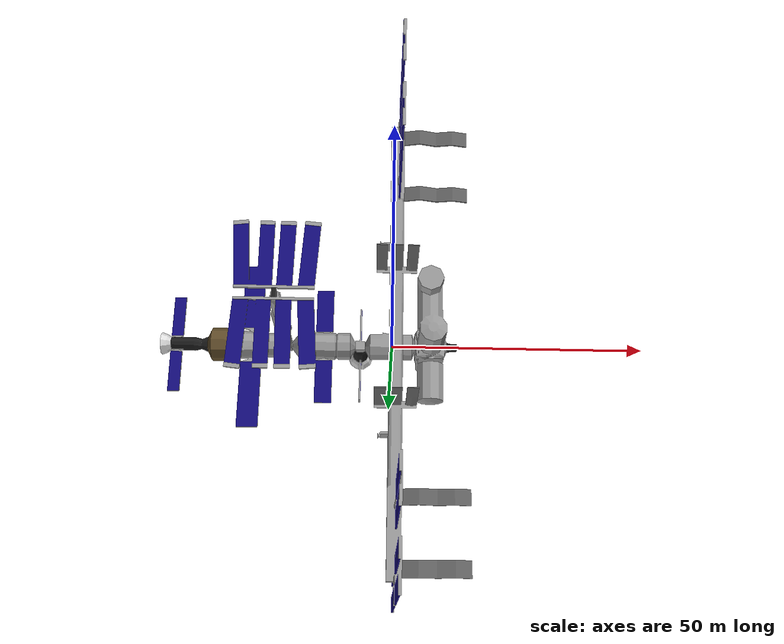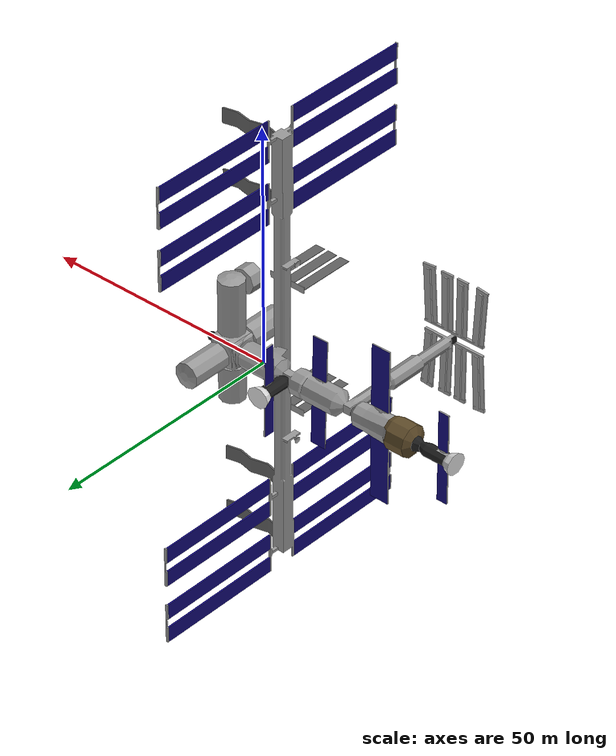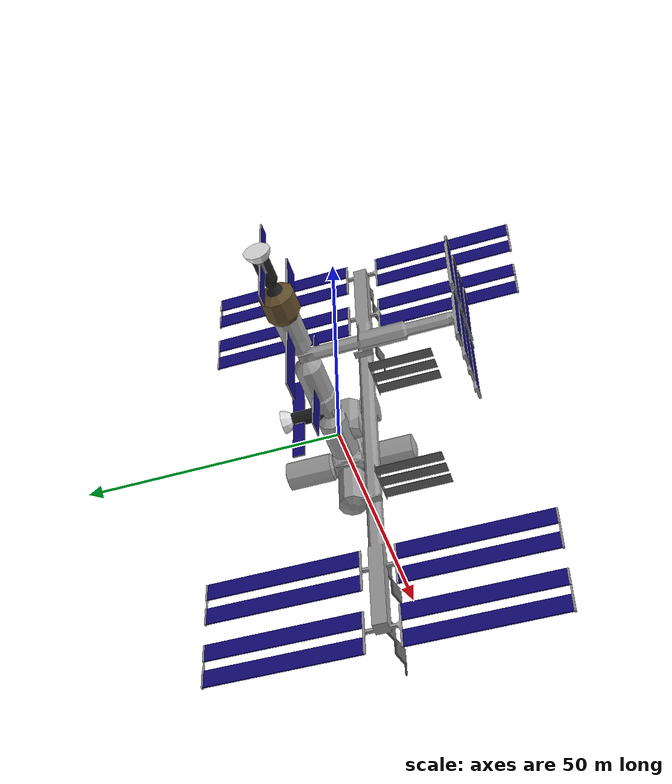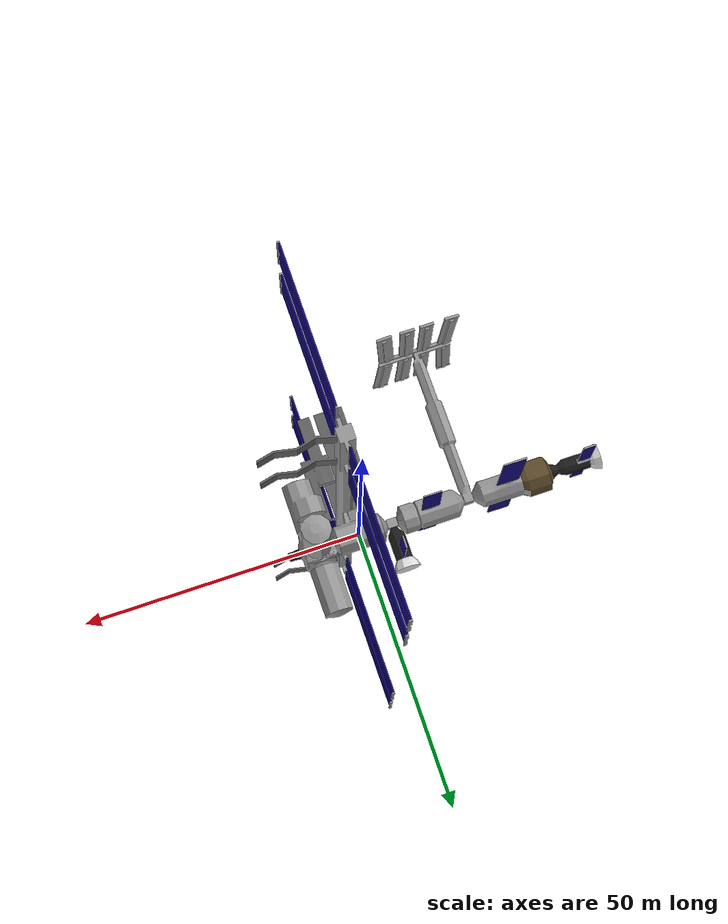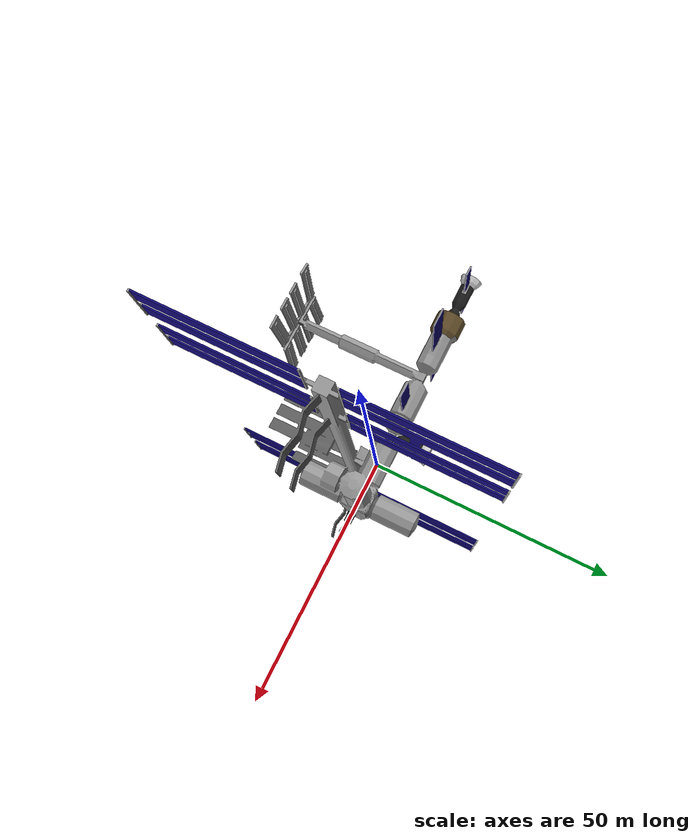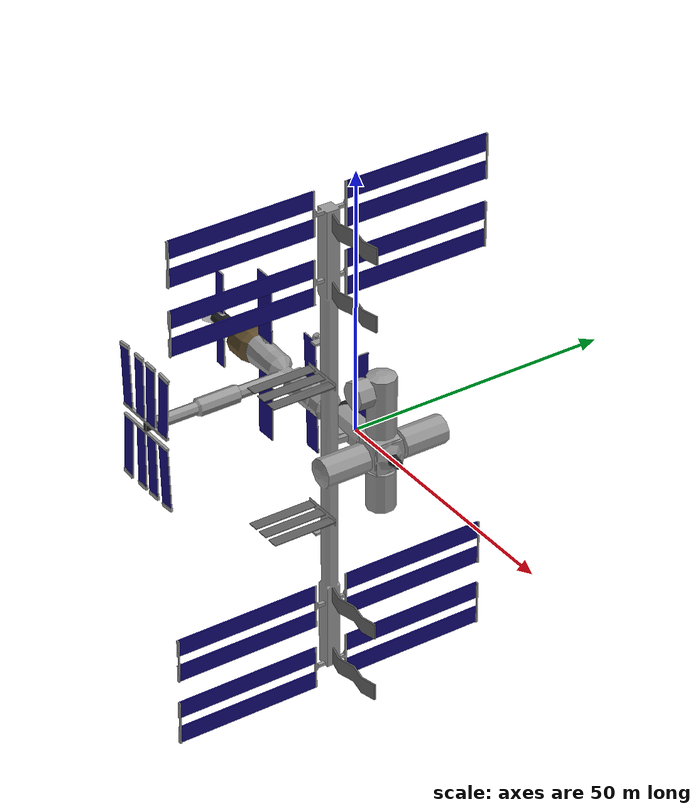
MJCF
<mujoco model="ISS_lowpoly">
  <default>
    <default class="visual">
      <geom group="2" type="mesh" contype="0" conaffinity="0" mass="0"/>
    </default>
    <default class="collision">
      <geom group="3" type="mesh" mass="0"/>
    </default>
  </default>
  <asset>
    <material name="Brown" specular="0.5" shininess="0.2" rgba="0.372549 0.295429 0.160707 1.000000"/>
    <material name="ISSDarkMetal" specular="0.5" shininess="0.01245731" rgba="0.109590 0.109590 0.109590 1.000000"/>
    <material name="ISSGray2" specular="0.5" shininess="0.01245731" rgba="0.376715 0.376715 0.376715 1.000000"/>
    <material name="ISSMetal1" specular="0.5" shininess="0.01245731" rgba="0.595895 0.595895 0.595895 1.000000"/>
    <material name="ISSSolarPanels" specular="0.5" shininess="0.01245731" rgba="0.068157 0.036909 0.470588 1.000000"/>
    <material name="ISSWhiteMetal" specular="0.5" shininess="0.01245731" rgba="0.876707 0.876707 0.876707 1.000000"/>
    <mesh file="ISS_lowpoly_0.obj"/>
    <mesh file="ISS_lowpoly_1.obj"/>
    <mesh file="ISS_lowpoly_2.obj"/>
    <mesh file="ISS_lowpoly_3.obj"/>
    <mesh file="ISS_lowpoly_4.obj"/>
    <mesh file="ISS_lowpoly_5.obj"/>
  </asset>
  <worldbody>
    <body name="ISS_lowpoly">
      <geom mesh="ISS_lowpoly_0" material="Brown" class="visual"/>
      <geom mesh="ISS_lowpoly_1" material="ISSWhiteMetal" class="visual"/>
      <geom mesh="ISS_lowpoly_2" material="ISSDarkMetal" class="visual"/>
      <geom mesh="ISS_lowpoly_3" material="ISSMetal1" class="visual"/>
      <geom mesh="ISS_lowpoly_4" material="ISSSolarPanels" class="visual"/>
      <geom mesh="ISS_lowpoly_5" material="ISSGray2" class="visual"/>
      <geom mesh="ISS_lowpoly_0" class="collision"/>
      <geom mesh="ISS_lowpoly_1" class="collision"/>
      <geom mesh="ISS_lowpoly_2" class="collision"/>
      <geom mesh="ISS_lowpoly_3" class="collision"/>
      <geom mesh="ISS_lowpoly_4" class="collision"/>
      <geom mesh="ISS_lowpoly_5" class="collision"/>
    </body>
  </worldbody>
</mujoco>
